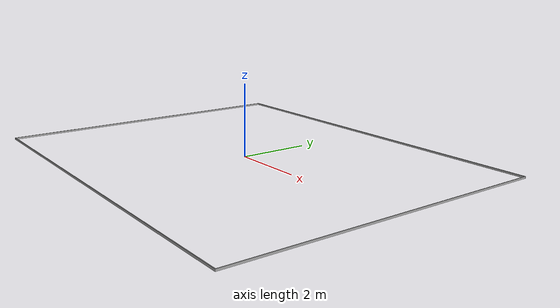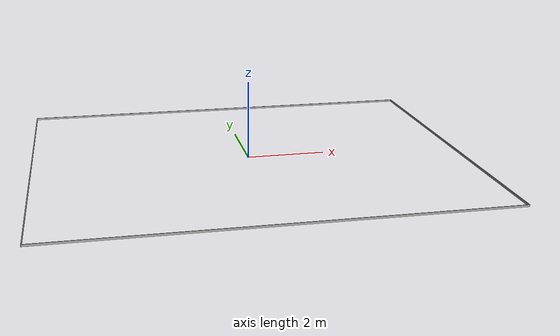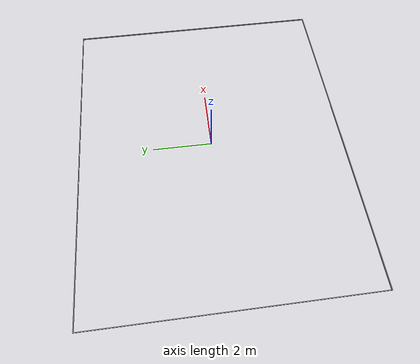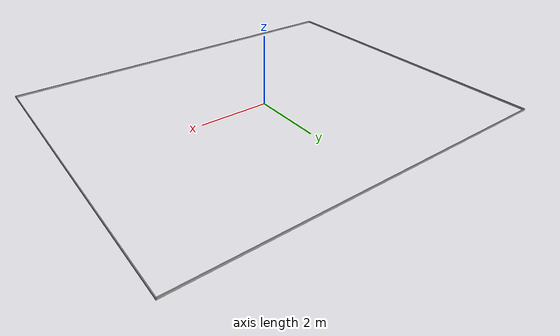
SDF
<?xml version='1.0'?>
<sdf version='1.6'>
  <model name='vsss_field_11*9'>
    <pose frame=''>0 0 0 0 -0 0</pose>
    <link name='Wall_0'>
      <collision name='Wall_0_Collision'>
        <geometry>
          <box>
            <size>11.02 0.02 0.05</size>
          </box>
        </geometry>
        <pose frame=''>0 0 0.025 0 -0 0</pose>
      </collision>
      <visual name='Wall_0_Visual'>
        <pose frame=''>0 0 0.025 0 -0 0</pose>
        <geometry>
          <box>
            <size>11.02 0.02 0.05</size>
          </box>
        </geometry>
        <material>
          <script>
            <uri>file://media/materials/scripts/gazebo.material</uri>
            <name>Gazebo/Grey</name>
          </script>
          <ambient>1 1 1 1</ambient>
        </material>
        <meta>
          <layer>0</layer>
        </meta>
      </visual>
      <pose frame=''>0 -4.5 0 0 -0 0</pose>
    </link>
    <link name='Wall_1'>
      <collision name='Wall_1_Collision'>
        <geometry>
          <box>
            <size>9.02 0.02 0.05</size>
          </box>
        </geometry>
        <pose frame=''>0 0 0.025 0 -0 0</pose>
      </collision>
      <visual name='Wall_1_Visual'>
        <pose frame=''>0 0 0.025 0 -0 0</pose>
        <geometry>
          <box>
            <size>9.02 0.02 0.05</size>
          </box>
        </geometry>
        <material>
          <script>
            <uri>file://media/materials/scripts/gazebo.material</uri>
            <name>Gazebo/Grey</name>
          </script>
          <ambient>1 1 1 1</ambient>
        </material>
        <meta>
          <layer>0</layer>
        </meta>
      </visual>
      <pose frame=''>5.5 -0 0 0 -0 1.5708</pose>
    </link>
    <link name='Wall_2'>
      <collision name='Wall_2_Collision'>
        <geometry>
          <box>
            <size>11.02 0.02 0.05</size>
          </box>
        </geometry>
        <pose frame=''>0 0 0.025 0 -0 0</pose>
      </collision>
      <visual name='Wall_2_Visual'>
        <pose frame=''>0 0 0.025 0 -0 0</pose>
        <geometry>
          <box>
            <size>11.02 0.02 0.05</size>
          </box>
        </geometry>
        <material>
          <script>
            <uri>file://media/materials/scripts/gazebo.material</uri>
            <name>Gazebo/Grey</name>
          </script>
          <ambient>1 1 1 1</ambient>
        </material>
        <meta>
          <layer>0</layer>
        </meta>
      </visual>
      <pose frame=''>0 4.5 0 0 -0 3.14159</pose>
    </link>
    <link name='Wall_3'>
      <collision name='Wall_3_Collision'>
        <geometry>
          <box>
            <size>9.02 0.02 0.05</size>
          </box>
        </geometry>
        <pose frame=''>0 0 0.025 0 -0 0</pose>
      </collision>
      <visual name='Wall_3_Visual'>
        <pose frame=''>0 0 0.025 0 -0 0</pose>
        <geometry>
          <box>
            <size>9.02 0.02 0.05</size>
          </box>
        </geometry>
        <material>
          <script>
            <uri>file://media/materials/scripts/gazebo.material</uri>
            <name>Gazebo/Grey</name>
          </script>
          <ambient>1 1 1 1</ambient>
        </material>
        <meta>
          <layer>0</layer>
        </meta>
      </visual>
      <pose frame=''>-5.5 0 0 0 -0 -1.5708</pose>
    </link>
    <static>1</static>
  </model>
</sdf>
